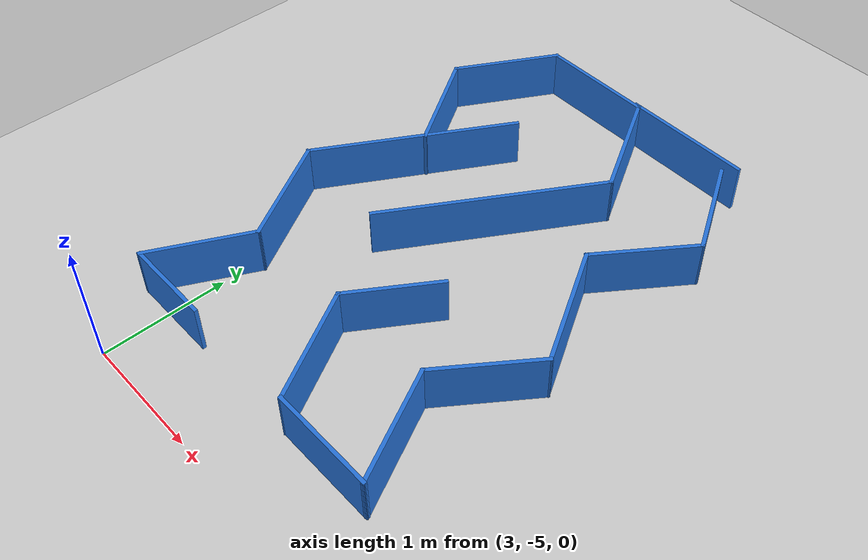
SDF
<?xml version="1.0" ?>
<sdf version="1.10">
<world name="nhom8_maze_delta_2">
  <physics name="8ms" type="ignored">
    <max_step_size>0.008</max_step_size>
    <real_time_factor>1.0</real_time_factor>
  </physics>
  <plugin filename="gz-sim-physics-system"   name="gz::sim::systems::Physics"/>
  <plugin filename="gz-sim-user-commands-system" name="gz::sim::systems::UserCommands"/>
  <plugin filename="gz-sim-scene-broadcaster-system" name="gz::sim::systems::SceneBroadcaster"/>
  <plugin filename="gz-sim-sensors-system" name="gz::sim::systems::Sensors">
    <render_engine>ogre2</render_engine>
  </plugin>

  <light type="directional" name="sun">
    <cast_shadows>true</cast_shadows>
    <pose>0 0 10 0 0 0</pose>
    <diffuse>1 1 1 1</diffuse>
    <specular>0.5 0.5 0.5 1</specular>
    <attenuation><range>1000</range><constant>0.9</constant>
      <linear>0.01</linear><quadratic>0.001</quadratic></attenuation>
    <direction>-0.5 0.1 -0.9</direction>
  </light>

  <model name="ground_plane">
    <static>true</static>
    <link name="link">
      <collision name="collision">
        <geometry><plane><normal>0 0 1</normal><size>50.0 50.0</size></plane></geometry>
        <surface><friction><ode><mu>40</mu></ode></friction></surface>
      </collision>
      <visual name="visual">
        <geometry><plane><normal>0 0 1</normal><size>50.0 50.0</size></plane></geometry>
        <material>
          <ambient>0.8 0.8 0.8 1</ambient><diffuse>0.8 0.8 0.8 1</diffuse>
          <specular>0.8 0.8 0.8 1</specular>
        </material>
      </visual>
    </link>
  </model>

  <!--  MAZE delta_2 (family delta)                -->
  <!--  walls: 18   wall bbox (local): (-1.3396, -1.9244, 1.3565, 1.9228)   -->
  <!--  openings: entrance=north@(0.495,1.923) hw=0.500  exit=south@(-0.049,-1.924) hw=0.470   -->
  <!--  start (local): (0.4785, 1.6496) yaw=-1.8185 rad  -->
  <!--  placement center: (3.9650, -2.5350)   -->

    <model name="wall_000">
      <static>true</static>
      <pose>3.523500 -0.625300 0.2000 0 0 0.000000</pose>
      <link name="link">
        <collision name="col">
          <geometry><box><size>0.9460 0.0300 0.4000</size></box></geometry>
        </collision>
        <visual name="vis">
          <geometry><box><size>0.9460 0.0300 0.4000</size></box></geometry>
          <material><ambient>0.15 0.45 0.85 1</ambient><diffuse>0.15 0.45 0.85 1</diffuse></material>
        </visual>
      </link>
    </model>

    <model name="wall_001">
      <static>true</static>
      <pose>3.059650 -4.446000 0.2000 0 0 0.000000</pose>
      <link name="link">
        <collision name="col">
          <geometry><box><size>0.7345 0.0300 0.4000</size></box></geometry>
        </collision>
        <visual name="vis">
          <geometry><box><size>0.7345 0.0300 0.4000</size></box></geometry>
          <material><ambient>0.15 0.45 0.85 1</ambient><diffuse>0.15 0.45 0.85 1</diffuse></material>
        </visual>
      </link>
    </model>

    <model name="wall_002">
      <static>true</static>
      <pose>4.806300 -4.446000 0.2000 0 0 0.000000</pose>
      <link name="link">
        <collision name="col">
          <geometry><box><size>0.8626 0.0300 0.4000</size></box></geometry>
        </collision>
        <visual name="vis">
          <geometry><box><size>0.8626 0.0300 0.4000</size></box></geometry>
          <material><ambient>0.15 0.45 0.85 1</ambient><diffuse>0.15 0.45 0.85 1</diffuse></material>
        </visual>
      </link>
    </model>

    <model name="wall_003">
      <static>true</static>
      <pose>5.107250 -1.074200 0.2000 0 0 -1.047182</pose>
      <link name="link">
        <collision name="col">
          <geometry><box><size>0.8522 0.0300 0.4000</size></box></geometry>
        </collision>
        <visual name="vis">
          <geometry><box><size>0.8522 0.0300 0.4000</size></box></geometry>
          <material><ambient>0.15 0.45 0.85 1</ambient><diffuse>0.15 0.45 0.85 1</diffuse></material>
        </visual>
      </link>
    </model>

    <model name="wall_004">
      <static>true</static>
      <pose>4.205850 -1.027700 0.2000 0 0 -1.062197</pose>
      <link name="link">
        <collision name="col">
          <geometry><box><size>0.9514 0.0300 0.4000</size></box></geometry>
        </collision>
        <visual name="vis">
          <geometry><box><size>0.9514 0.0300 0.4000</size></box></geometry>
          <material><ambient>0.15 0.45 0.85 1</ambient><diffuse>0.15 0.45 0.85 1</diffuse></material>
        </visual>
      </link>
    </model>

    <model name="wall_005">
      <static>true</static>
      <pose>5.068150 -2.535400 0.2000 0 0 -1.047181</pose>
      <link name="link">
        <collision name="col">
          <geometry><box><size>1.0074 0.0300 0.4000</size></box></geometry>
        </collision>
        <visual name="vis">
          <geometry><box><size>1.0074 0.0300 0.4000</size></box></geometry>
          <material><ambient>0.15 0.45 0.85 1</ambient><diffuse>0.15 0.45 0.85 1</diffuse></material>
        </visual>
      </link>
    </model>

    <model name="wall_006">
      <static>true</static>
      <pose>5.022950 -4.042150 0.2000 0 0 -1.111713</pose>
      <link name="link">
        <collision name="col">
          <geometry><box><size>0.9309 0.0300 0.4000</size></box></geometry>
        </collision>
        <visual name="vis">
          <geometry><box><size>0.9309 0.0300 0.4000</size></box></geometry>
          <material><ambient>0.15 0.45 0.85 1</ambient><diffuse>0.15 0.45 0.85 1</diffuse></material>
        </visual>
      </link>
    </model>

    <model name="wall_007">
      <static>true</static>
      <pose>2.867850 -1.747150 0.2000 0 0 -1.011161</pose>
      <link name="link">
        <collision name="col">
          <geometry><box><size>0.9104 0.0300 0.4000</size></box></geometry>
        </collision>
        <visual name="vis">
          <geometry><box><size>0.9104 0.0300 0.4000</size></box></geometry>
          <material><ambient>0.15 0.45 0.85 1</ambient><diffuse>0.15 0.45 0.85 1</diffuse></material>
        </visual>
      </link>
    </model>

    <model name="wall_008">
      <static>true</static>
      <pose>4.165950 -4.042750 0.2000 0 0 -1.063616</pose>
      <link name="link">
        <collision name="col">
          <geometry><box><size>0.9526 0.0300 0.4000</size></box></geometry>
        </collision>
        <visual name="vis">
          <geometry><box><size>0.9526 0.0300 0.4000</size></box></geometry>
          <material><ambient>0.15 0.45 0.85 1</ambient><diffuse>0.15 0.45 0.85 1</diffuse></material>
        </visual>
      </link>
    </model>

    <model name="wall_009">
      <static>true</static>
      <pose>2.861550 -3.298950 0.2000 0 0 -1.047197</pose>
      <link name="link">
        <collision name="col">
          <geometry><box><size>0.9442 0.0300 0.4000</size></box></geometry>
        </collision>
        <visual name="vis">
          <geometry><box><size>0.9442 0.0300 0.4000</size></box></geometry>
          <material><ambient>0.15 0.45 0.85 1</ambient><diffuse>0.15 0.45 0.85 1</diffuse></material>
        </visual>
      </link>
    </model>

    <model name="wall_010">
      <static>true</static>
      <pose>5.067950 -3.298500 0.2000 0 0 0.946942</pose>
      <link name="link">
        <collision name="col">
          <geometry><box><size>0.8674 0.0300 0.4000</size></box></geometry>
        </collision>
        <visual name="vis">
          <geometry><box><size>0.8674 0.0300 0.4000</size></box></geometry>
          <material><ambient>0.15 0.45 0.85 1</ambient><diffuse>0.15 0.45 0.85 1</diffuse></material>
        </visual>
      </link>
    </model>

    <model name="wall_011">
      <static>true</static>
      <pose>5.068300 -1.771150 0.2000 0 0 0.948768</pose>
      <link name="link">
        <collision name="col">
          <geometry><box><size>0.8691 0.0300 0.4000</size></box></geometry>
        </collision>
        <visual name="vis">
          <geometry><box><size>0.8691 0.0300 0.4000</size></box></geometry>
          <material><ambient>0.15 0.45 0.85 1</ambient><diffuse>0.15 0.45 0.85 1</diffuse></material>
        </visual>
      </link>
    </model>

    <model name="wall_012">
      <static>true</static>
      <pose>4.147050 -3.325800 0.2000 0 0 0.991507</pose>
      <link name="link">
        <collision name="col">
          <geometry><box><size>0.7798 0.0300 0.4000</size></box></geometry>
        </collision>
        <visual name="vis">
          <geometry><box><size>0.7798 0.0300 0.4000</size></box></geometry>
          <material><ambient>0.15 0.45 0.85 1</ambient><diffuse>0.15 0.45 0.85 1</diffuse></material>
        </visual>
      </link>
    </model>

    <model name="wall_013">
      <static>true</static>
      <pose>3.959550 -2.203350 0.2000 0 0 1.024022</pose>
      <link name="link">
        <collision name="col">
          <geometry><box><size>1.8404 0.0300 0.4000</size></box></geometry>
        </collision>
        <visual name="vis">
          <geometry><box><size>1.8404 0.0300 0.4000</size></box></geometry>
          <material><ambient>0.15 0.45 0.85 1</ambient><diffuse>0.15 0.45 0.85 1</diffuse></material>
        </visual>
      </link>
    </model>

    <model name="wall_014">
      <static>true</static>
      <pose>2.898750 -4.070400 0.2000 0 0 1.099670</pose>
      <link name="link">
        <collision name="col">
          <geometry><box><size>0.8731 0.0300 0.4000</size></box></geometry>
        </collision>
        <visual name="vis">
          <geometry><box><size>0.8731 0.0300 0.4000</size></box></geometry>
          <material><ambient>0.15 0.45 0.85 1</ambient><diffuse>0.15 0.45 0.85 1</diffuse></material>
        </visual>
      </link>
    </model>

    <model name="wall_015">
      <static>true</static>
      <pose>3.051500 -2.192600 0.2000 0 0 1.038547</pose>
      <link name="link">
        <collision name="col">
          <geometry><box><size>1.6793 0.0300 0.4000</size></box></geometry>
        </collision>
        <visual name="vis">
          <geometry><box><size>1.6793 0.0300 0.4000</size></box></geometry>
          <material><ambient>0.15 0.45 0.85 1</ambient><diffuse>0.15 0.45 0.85 1</diffuse></material>
        </visual>
      </link>
    </model>

    <model name="wall_016">
      <static>true</static>
      <pose>2.849850 -0.999750 0.2000 0 0 1.048252</pose>
      <link name="link">
        <collision name="col">
          <geometry><box><size>0.8942 0.0300 0.4000</size></box></geometry>
        </collision>
        <visual name="vis">
          <geometry><box><size>0.8942 0.0300 0.4000</size></box></geometry>
          <material><ambient>0.15 0.45 0.85 1</ambient><diffuse>0.15 0.45 0.85 1</diffuse></material>
        </visual>
      </link>
    </model>

    <model name="wall_017">
      <static>true</static>
      <pose>4.459900 -0.612200 0.2000 0 0 0.000000</pose>
      <link name="link">
        <collision name="col">
          <geometry><box><size>1.0600 0.0300 0.4000</size></box></geometry>
        </collision>
        <visual name="vis">
          <geometry><box><size>1.0600 0.0300 0.4000</size></box></geometry>
          <material><ambient>0.15 0.45 0.85 1</ambient><diffuse>0.15 0.45 0.85 1</diffuse></material>
        </visual>
      </link>
    </model>

    <model name="floor">
      <static>true</static>
      <pose>3.965000 -2.535000 -0.02 0 0 0</pose>
      <link name="link">
        <collision name="col">
          <geometry><box><size>2.7961 3.9472 0.03</size></box></geometry>
        </collision>
        <visual name="vis">
          <geometry><box><size>2.7961 3.9472 0.03</size></box></geometry>
          <material><ambient>0.87 0.87 0.82 1</ambient><diffuse>0.87 0.87 0.82 1</diffuse></material>
        </visual>
      </link>
    </model>
</world>
</sdf>
